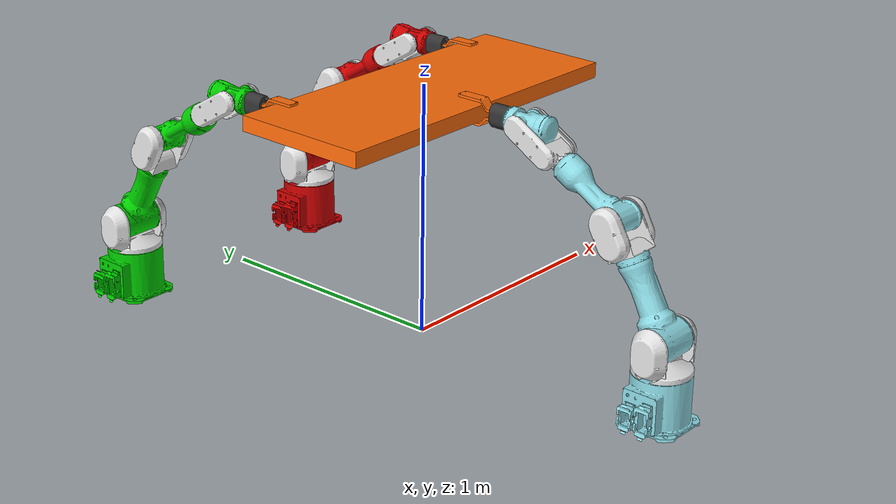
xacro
<?xml version="1.0" ?>

<robot name="pa10"
  xmlns:xacro="http://www.ros.org/wiki/xacro">

  <xacro:arg name="multiple" default="false"/>
  <!-- If multiple robots will be used -->
  <xacro:arg name="namespace" default=""/>
  <!-- namespace of the robot -->

  <!-- camera -->
  <xacro:arg name="enable_camera" default="false"/>

  <xacro:arg name="num_of_agents" default="3"/>
  <!-- robot arguements -->
  <xacro:arg name="pa10_1_color" default="default"/>
  <xacro:arg name="robot_1_interface" default="velocity"/>
  <xacro:arg name="pa10_2_color" default="red"/>
  <xacro:arg name="robot_2_interface" default="velocity"/>
  <xacro:arg name="pa10_3_color" default="green"/>
  <xacro:arg name="robot_3_interface" default="velocity"/>

  <xacro:arg name="use_object" default="true"/>
  <xacro:arg name="type_of_object" default="box"/>

  <!-- Number of Agents -->
  <xacro:property name="agents" value="$(arg num_of_agents)"/>
  <!-- general properties -->
  <xacro:property name="robot_radius" value="0.938"/>
  <xacro:property name="cos30" value="0.866"/>
  <xacro:property name="sin30" value="0.5"/>

  <!-- ROBOT 1 Properties -->
  <xacro:property name="robot_1_x" value="0.0"/>
  <xacro:property name="robot_1_y" value="-1.1"/>
  <xacro:property name="robot_1_yaw" value= "1.57079"/>
  <xacro:property name="HWInterface" value="$(arg robot_1_interface)" />

  <!-- ROBOT 2 Properties -->
  <xacro:property name="robot_2_enable" value="false"/>
  <xacro:property name="robot_2_x" value="0.5"/>
  <xacro:property name="robot_2_y" value="1.1"/>
  <xacro:property name="robot_2_yaw" value="1.57079"/>
  <xacro:property name="HWInterface2" value="$(arg robot_2_interface)" />

  <!-- ROBOT 3 Properties -->
  <xacro:property name="robot_3_enable" value="false"/>
  <xacro:property name="robot_3_x" value="-0.5"/>
  <xacro:property name="robot_3_y" value="1.1"/>
  <xacro:property name="robot_3_yaw" value="1.57079"/>
  <xacro:property name="HWInterface3" value="$(arg robot_3_interface)" />

  <xacro:property name="is_multiple" value="$(arg multiple)" />
  <xacro:property name="nsp" value="$(arg namespace)" />
  <xacro:property name="enable_camera_" value="$(arg enable_camera)" />

  <!-- OBJECT PARAMETERS -->
  <xacro:property name="use_object_" value="$(arg use_object)"/>
  <xacro:property name="object_length" value="0.545"/>
  <xacro:property name="object_height" value="0.545"/>
  <xacro:property name="object_color" value="white"/>
  <xacro:property name="object_mass" value="1.0"/>
  <xacro:property name="object_type" value="$(arg type_of_object)"/>

  <!-- Import all Gazebo-customization elements, including Gazebo colors -->
  <xacro:include filename="$(find pa10_description)/urdf/pa10csl.gazebo.urdf.xacro" />
  <!-- Import Rviz colors -->
  <xacro:include filename="$(find pa10_description)/urdf/materials.xacro" />
  <!-- Import Transmitions -->
  <xacro:include filename="$(find pa10_description)/urdf/arm.transmission.xacro"/>
  <!-- Import pa10 properties -->
  <xacro:include filename="$(find pa10_description)/urdf/pa10properties.xacro"/>
  <!-- Import sensors -->
  <xacro:include filename="$(find pa10_description)/urdf/sensors.urdf.xacro"/>
  <!-- Import PA10 Arm -->
  <xacro:include filename="$(find pa10_description)/urdf/pa10root.urdf.xacro"/>

  <xacro:if value="${agents == 2}">
    <xacro:if value="${object_type == 'box'}">
      <xacro:property name="robot_2_x" value="0.0"/>
      <xacro:property name="robot_2_enable" value="true"/>
      <xacro:property name="robot_3_enable" value="false"/>
      <xacro:property name="object_length" value="0.545"/>
      <xacro:property name="use_object_" value="true"/>
    </xacro:if>
    <xacro:if value="${object_type == 'cylinder'}">
      <xacro:property name="robot_2_x" value="0.0"/>
      <xacro:property name="robot_2_enable" value="true"/>
      <xacro:property name="robot_3_enable" value="false"/>
      <xacro:property name="object_length" value="${0.545/2}"/>
      <xacro:property name="use_object_" value="true"/>
    </xacro:if>
  </xacro:if>

  <xacro:if value="${agents == 3}">
    <xacro:if value="${object_type == 'cylinder'}">

      <xacro:property name="object_length" value="${0.545/2}"/>
      <xacro:property name="use_object_" value="true"/>

      <xacro:property name="robot_2_x" value="${cos30*(object_length + robot_radius-0.1)}"/>
      <xacro:property name="robot_2_y" value="${sin30*(object_length + robot_radius-0.1)}"/>
      <xacro:property name="robot_2_yaw" value="${pi/6}"/>
      <xacro:property name="robot_2_enable" value="true"/>

      <xacro:property name="robot_3_x" value="${-cos30*(object_length + robot_radius-0.1)}"/>
      <xacro:property name="robot_3_y" value="${sin30*(object_length + robot_radius-0.1)}"/>
      <xacro:property name="robot_3_yaw" value="${pi/3+pi/2}"/>
      <xacro:property name="robot_3_enable" value="true"/>

    </xacro:if>
    <xacro:if value="${object_type == 'box'}">
      <xacro:property name="use_object_" value="true"/>
      <xacro:property name="object_length" value="1.345"/>
      <xacro:property name="robot_2_x" value="0.5"/>
      <xacro:property name="robot_2_enable" value="true"/>
      <xacro:property name="robot_3_x" value="-0.5"/>
      <xacro:property name="robot_3_enable" value="true"/>
    </xacro:if>
  </xacro:if>
  <!-- LINKS -->

  <link name="world"/>

  <xacro:pa10_arm prefix="pa10_1_" xyz="${robot_1_x} ${robot_1_y} 0.0" rpy="0 0 ${robot_1_yaw}" S2_offset="0.5" E2_offset="0.53" W2_offset="0.54" W3_offset="-1.57" interface="${HWInterface}" enable_camera="false" color="$(arg pa10_1_color)"/>

  <xacro:if value="${use_object_}">
    <!--- Object -->
    <link name="object">
      <visual>
        <origin xyz="0 0 -0.0" rpy="0 0 0"/>
        <geometry>
          <xacro:if value="${object_type == 'cylinder'}">
            <cylinder length="0.06" radius="${object_length}"/>
          </xacro:if>
          <xacro:if value="${object_type == 'box'}">
            <box size="${object_length} ${object_height} 0.06"/>
          </xacro:if>
        </geometry>
        <material name="orange"/>
      </visual>
      <collision>
        <origin xyz="0 0 0.0" rpy="0 0 0"/>
        <geometry>
          <xacro:if value="${object_type == 'cylinder'}">
            <cylinder length="0.06" radius="${object_length/1.2}"/>
          </xacro:if>
          <xacro:if value="${object_type == 'box'}">
            <box size="${object_length/2} ${object_height/2} 0.06"/>
          </xacro:if>
        </geometry>
      </collision>
      <inertial>
        <mass value="${object_mass}"/>
        <xacro:if value="${object_type == 'cylinder'}">
          <xacro:inertia_cylinder radius="${object_length}" height="0.06" mass="${object_mass}"/>
        </xacro:if>
        <xacro:if value="${object_type == 'box'}">
          <xacro:inertia_box height="${object_length}" mass="${object_mass}"/>
        </xacro:if>
      </inertial>
    </link>

    <!-- Attach object to pa10_1 -->
    <joint name="$pa10_1_ee_tool_to_object" type="fixed">
      <origin rpy="1.576 0 -3.141" xyz="0 0 0.162"/>
      <parent link="pa10_1_link_ee_tool"/>
      <child link="object"/>
    </joint>
  </xacro:if>

  <!-- ROBOT 2 -->
  <xacro:if value="${robot_2_enable}">
    <xacro:pa10_arm prefix="pa10_2_" xyz="${robot_2_x} ${robot_2_y} 0.0" rpy="0 0 ${robot_2_yaw}" S2_offset="-0.5" E2_offset="-0.53" W2_offset="-0.54" W3_offset="-1.57" interface="${HWInterface2}" enable_camera="false" color="$(arg pa10_2_color)"/>

    <gazebo>
      <joint name="object_to_pa10_2" type="fixed">
        <parent>object</parent>
        <child>pa10_2_link_ee_tool</child>
        <xacro:if value="${object_type == 'cylinder'}">
          <xacro:if value="${agents == 3}">
            <pose>0.157 0.102 -0.003 -1.571 0 2.094</pose>
          </xacro:if>
          <xacro:if value="${agents == 2}">
            <pose>${robot_2_x} 0.162 0.0 -1.576 0 -3.142</pose>
          </xacro:if>
        </xacro:if>
        <xacro:if value="${object_type == 'box'}">
          <pose>${robot_2_x} 0.162 0.0 -1.576 0 -3.142</pose>
        </xacro:if>
      </joint>
    </gazebo>

  </xacro:if>

  <!-- ROBOT 3 -->
  <xacro:if value="${robot_3_enable}">
    <xacro:pa10_arm prefix="pa10_3_" xyz="${robot_3_x} ${robot_3_y} 0.0" rpy="0 0 ${robot_3_yaw}" S2_offset="-0.5" E2_offset="-0.53" W2_offset="-0.54" W3_offset="-1.57" interface="${HWInterface3}" enable_camera="${enable_camera_}" color="$(arg pa10_3_color)"/>

    <gazebo>
      <joint name="object_to_pa10_3" type="fixed">
        <parent>object</parent>
        <child>pa10_3_link_ee_tool</child>
        <xacro:if value="${object_type == 'cylinder'}">
          <xacro:if value="${agents == 3}">
            <pose>-0.157 0.102 -0.003 -1.571 0 -2.094</pose>
          </xacro:if>
          <xacro:if value="${agents == 2}">
            <pose>${robot_3_x} 0.162 0.0 -1.576 0 -3.142</pose>
          </xacro:if>
        </xacro:if>
        <xacro:if value="${object_type == 'box'}">
          <pose>${robot_3_x} 0.162 0.0 -1.576 0 -3.142</pose>
        </xacro:if>
      </joint>
    </gazebo>

  </xacro:if>

</robot>

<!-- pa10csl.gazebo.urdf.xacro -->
<robot xmlns:xacro="http://www.ros.org/wiki/xacro">

  <!-- ros_control plugin  and RGBD Sensor Plugin-->
  <gazebo>
    <plugin name="gazebo_ros_control" filename="libgazebo_ros_control.so">
      <xacro:if value="${is_multiple}">
        <robotNamespace>/${nsp}</robotNamespace>
      </xacro:if>
      <xacro:unless value="${is_multiple}">
        <robotNamespace></robotNamespace>
      </xacro:unless>
      <robotSimType>gazebo_ros_control/DefaultRobotHWSim</robotSimType>
      <legacyModeNS>true</legacyModeNS>
      <controlPeriod> 0.001</controlPeriod>
    </plugin>
  </gazebo>

  <!-- Inertial of Cylinder -->
  <xacro:macro name="inertia_cylinder" params="mass height radius axis:=0">
    <xacro:property name="Ir" value="${0.0833*mass*(3.0*radius*radius + height*height)}" />
    <xacro:property name="Ih" value="${0.5*mass*(radius*radius)}" />
    <!-- z Axis -->
    <xacro:unless value="${axis}">
      <inertia ixx="${Ir}" ixy="0" ixz="0" iyy="${Ir}" iyz="0" izz="${Ih}" />
    </xacro:unless>
    <!-- y Axis -->
    <xacro:unless value="${axis-1}">
      <inertia ixx="${Ir}" ixy="0" ixz="0" iyy="${Ih}" izz="${Ir}" iyz="0" />
    </xacro:unless>
    <!-- x Axis -->
    <xacro:unless value="${axis-2}">
      <inertia ixx="${Ih}" iyy="${Ir}" iyz="0" izz="${Ir}" ixy="0" ixz="0" />
    </xacro:unless>
  </xacro:macro>

  <!-- Inertial of Box -->
  <xacro:macro name="inertia_box" params="mass height:=0.05 width:=0.0 depth:=0.0">
    <xacro:if value="${width == 0.0}">
      <xacro:property name="width" value="${height}"/>
    </xacro:if>
    <xacro:if value="${depth == 0.0}">
      <xacro:property name="depth" value="${height}"/>
    </xacro:if>
    <xacro:property name="Iw" value="${(1.0/12.0)*mass*(height*height + depth*depth)}" />
    <xacro:property name="Ih" value="${(1.0/12.0)*mass*(width*width + depth*depth)}" />
    <xacro:property name="Id" value="${(1.0/12.0)*mass*(width*width + height*height)}" />

    <inertia ixx="${Iw}" ixy="0" ixz="0" iyy="${Ih}" iyz="0" izz="${Id}" />
  </xacro:macro>

  <!-- Gazebo Colors Material -->
  <xacro:macro name="gazebo_materials" params="prefix:='' color:='default'">
    <!-- base_link -->
    <gazebo reference="${prefix}base_link">
      <mu1>0.5</mu1>
      <mu2>0.5</mu2>
      <xacro:if value="${color == 'default'}">
        <visual>
          <material>
            <ambient>0.55 0.85 0.89 1.0</ambient>
            <diffuse>.7 .7 .7  1.0</diffuse>
            <specular>0.01 0.01 0.01 1.000000 1.500000</specular>
          </material>
        </visual>
      </xacro:if>
      <xacro:if value="${color == 'red'}">
        <material>
            Gazebo/Red
        </material>
      </xacro:if>
      <xacro:if value="${color == 'green'}">
        <material>
            Gazebo/Green
        </material>
      </xacro:if>
      <xacro:if value="${color == 'orange'}">
        <material>
            Gazebo/Orange
        </material>
      </xacro:if>

    </gazebo>

    <!-- Link1 -->
    <gazebo reference="${prefix}link_shoulder_1">
      <visual>
        <material>
          <ambient>0.88 0.88 0.88 1.0</ambient>
          <diffuse>.7 .7 .7  1.0</diffuse>
          <specular>0.01 0.01 0.01 1.000000 1.500000</specular>
        </material>
      </visual>
    </gazebo>

    <!-- Link2 -->
    <gazebo reference="${prefix}link_shoulder_2">
      <mu1>0.5</mu1>
      <mu2>0.5</mu2>
      <xacro:if value="${color == 'default'}">
        <visual>
          <material>
            <ambient>0.55 0.85 0.89 1.0</ambient>
            <diffuse>.7 .7 .7  1.0</diffuse>
            <specular>0.01 0.01 0.01 1.000000 1.500000</specular>
          </material>
        </visual>
      </xacro:if>
      <xacro:if value="${color == 'red'}">
        <material>
            Gazebo/Red
        </material>
      </xacro:if>
      <xacro:if value="${color == 'green'}">
        <material>
            Gazebo/Green
        </material>
      </xacro:if>
      <xacro:if value="${color == 'orange'}">
        <material>
            Gazebo/Orange
        </material>
      </xacro:if>

    </gazebo>

    <!-- Link3 -->
    <gazebo reference="${prefix}link_elbow_1">
      <mu1>0.5</mu1>
      <mu2>0.5</mu2>
      <visual>
        <material>
          <ambient>0.88 0.88 0.88 1.0</ambient>
          <diffuse>.7 .7 .7  1.0</diffuse>
          <specular>0.01 0.01 0.01 1.000000 1.500000</specular>
        </material>
      </visual>
    </gazebo>

    <!-- Link4 -->
    <gazebo reference="${prefix}link_elbow_2">
      <mu1>0.5</mu1>
      <mu2>0.5</mu2>
      <xacro:if value="${color == 'default'}">
        <visual>
          <material>
            <ambient>0.55 0.85 0.89 1.0</ambient>
            <diffuse>.7 .7 .7  1.0</diffuse>
            <specular>0.01 0.01 0.01 1.000000 1.500000</specular>
          </material>
        </visual>
      </xacro:if>
      <xacro:if value="${color == 'red'}">
        <material>
            Gazebo/Red
        </material>
      </xacro:if>
      <xacro:if value="${color == 'green'}">
        <material>
            Gazebo/Green
        </material>
      </xacro:if>
      <xacro:if value="${color == 'orange'}">
        <material>
            Gazebo/Orange
        </material>
      </xacro:if>
    </gazebo>

    <!-- Link5 -->
    <gazebo reference="${prefix}link_wrist_1">
      <mu1>0.5</mu1>
      <mu2>0.5</mu2>
      <visual>
        <material>
          <ambient>0.88 0.88 0.88 1.0</ambient>
          <diffuse>.7 .7 .7  1.0</diffuse>
          <specular>0.01 0.01 0.01 1.000000 1.500000</specular>
        </material>
      </visual>
    </gazebo>

    <!-- Link6 -->
    <gazebo reference="${prefix}link_wrist_2">
      <mu1>0.5</mu1>
      <mu2>0.5</mu2>
      <xacro:if value="${color == 'default'}">
        <visual>
          <material>
            <ambient>0.55 0.85 0.89 1.0</ambient>
            <diffuse>.7 .7 .7  1.0</diffuse>
            <specular>0.01 0.01 0.01 1.000000 1.500000</specular>
          </material>
        </visual>
      </xacro:if>
      <xacro:if value="${color == 'red'}">
        <material>
            Gazebo/Red
        </material>
      </xacro:if>
      <xacro:if value="${color == 'green'}">
        <material>
            Gazebo/Green
        </material>
      </xacro:if>
      <xacro:if value="${color == 'orange'}">
        <material>
            Gazebo/Orange
        </material>
      </xacro:if>

    </gazebo>

    <gazebo reference="${prefix}link_wrist_3">
      <mu1>0.5</mu1>
      <mu2>0.5</mu2>

      <xacro:if value="${color == 'default'}">
        <visual>
          <material>
            <ambient>0.55 0.85 0.89 1.0</ambient>
            <diffuse>.7 .7 .7  1.0</diffuse>
            <specular>0.01 0.01 0.01 1.000000 1.500000</specular>
          </material>
        </visual>
      </xacro:if>
      <xacro:if value="${color == 'red'}">
        <material>
            Gazebo/Red
        </material>
      </xacro:if>
      <xacro:if value="${color == 'green'}">
        <material>
            Gazebo/Green
        </material>
      </xacro:if>
      <xacro:if value="${color == 'orange'}">
        <material>
            Gazebo/Orange
        </material>
      </xacro:if>

    </gazebo>

    <gazebo reference="${prefix}link_gripper_base">
      <mu1>0.5</mu1>
      <mu2>0.5</mu2>
      <material>Gazebo/Grey</material>
    </gazebo>

    <gazebo reference="${prefix}link_finger_1">
      <mu1>1000.5</mu1>
      <mu2>1000.5</mu2>
      <material>Gazebo/Orange</material>
    </gazebo>

    <gazebo reference="${prefix}link_finger_2">
      <mu1>1000.5</mu1>
      <mu2>1000.5</mu2>
      <material>Gazebo/Orange</material>
    </gazebo>
  </xacro:macro>

  <gazebo>
    <material name="pa10_blue">
      <color rgba="${140/255} ${217/255} ${227/255} 1.0"/>
    </material>
  </gazebo>

</robot>

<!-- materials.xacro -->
<robot xmlns:xacro="http://www.ros.org/wiki/xacro">

  <material name="black">
    <color rgba="0.0 0.0 0.0 1.0"/>
  </material>

  <material name="blue">
    <color rgba="0.0 0.0 0.8 1.0"/>
  </material>

  <material name="green">
    <color rgba="0.0 0.8 0.0 1.0"/>
  </material>

  <material name="grey">
    <color rgba="0.2 0.2 0.2 1.0"/>
  </material>

  <material name="orange">
    <color rgba="${255/255} ${108/255} ${10/255} 1.0"/>
  </material>

  <material name="brown">
    <color rgba="${222/255} ${207/255} ${195/255} 1.0"/>
  </material>

  <material name="pa10_blue">
    <color rgba="${140/255} ${217/255} ${227/255} 1.0"/>
  </material>

  <material name="red">
    <color rgba="0.8 0.0 0.0 1.0"/>
  </material>

  <material name="white">
    <color rgba="1.0 1.0 1.0 1.0"/>
  </material>

</robot>

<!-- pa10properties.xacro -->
<robot xmlns:xacro="http://www.ros.org/wiki/xacro">

    <!-- Not used yet -->
    <xacro:property name="inertia_height_shoulder" value="500"/>
    <xacro:property name="inertia_height_elbow" value="300"/>
    <xacro:property name="inertia_height_wrist" value="100"/>
    <xacro:property name="inertia_height_gripper" value="100"/>

    <!-- Mass -->
    <xacro:property name="mass_shoulder" value="0.5"/>
    <xacro:property name="mass_elbow" value="0.5"/>
    <xacro:property name="mass_wrist" value="0.01"/>
    <xacro:property name="mass_gripper" value="0.01"/>

    <xacro:property name="pi" value="3.1415926535897931" />
    <!-- JOINTS EFFORT LIMITS -->
    <!-- NOT THE ACTUAL VALUE -->
    <xacro:property name="arm_eps" value="0.02" />
    <xacro:property name="joint_1_max_effort" value="550.0"/>
    <xacro:property name="joint_2_max_effort" value="550.0"/>
    <xacro:property name="joint_3_max_effort" value="550.0"/>
    <xacro:property name="joint_4_max_effort" value="550.0"/>
    <xacro:property name="joint_5_max_effort" value="550.0"/>
    <xacro:property name="joint_6_max_effort" value="550.0"/>
    <xacro:property name="joint_7_max_effort" value="550.0"/>

    <!-- JOINTS POSITION LIMITS -->
    <!-- Real Values: [177, 94, 174, 137, 255, 165, 255] (deg)-->
    <xacro:property name="joint_1_max_position" value="${170.0 *pi/180.0}"/>
    <xacro:property name="joint_2_max_position" value="${90.0 *pi/180.0}"/>
    <xacro:property name="joint_3_max_position" value="${170.0 *pi/180.0}"/>
    <xacro:property name="joint_4_max_position" value="${130.0 *pi/180.0}"/>
    <xacro:property name="joint_5_max_position" value="${250.0 *pi/180.0}"/>
    <xacro:property name="joint_6_max_position" value="${160.0 *pi/180.0}"/>
    <xacro:property name="joint_7_max_position" value="${250.0 *pi/180.0}"/>

    <!-- JOINTS VELOCITIE LIMITS-->
    <!-- Real Values: [1, 1, 2, 2, 2, 2*pi, 2*pi] (rad/sec)-->
    <xacro:property name="joint_1_max_velocity" value="1.1"/>
    <xacro:property name="joint_2_max_velocity" value="1.1"/>
    <xacro:property name="joint_3_max_velocity" value="1.1"/>
    <xacro:property name="joint_4_max_velocity" value="1.1"/>
    <xacro:property name="joint_5_max_velocity" value="1.1"/>
    <xacro:property name="joint_6_max_velocity" value="${1.8*pi}"/>
    <xacro:property name="joint_7_max_velocity" value="${1.8*pi}"/>

    <!-- JOINT DYNAMICS DAMPING + FRICTION-->
    <!-- >> !! Not Real Values !! << -->
    <!-- DAMPING -->
    <xacro:property name="joint_1_damping" value="0.8"/>
    <xacro:property name="joint_2_damping" value="0.8"/>
    <xacro:property name="joint_3_damping" value="0.8"/>
    <xacro:property name="joint_4_damping" value="0.8"/>
    <xacro:property name="joint_5_damping" value="0.8"/>
    <xacro:property name="joint_6_damping" value="0.8"/>
    <xacro:property name="joint_7_damping" value="0.8"/>
    <xacro:property name="joint_finger_damping" value="0.8"/>

    <!-- FRICTION -->
    <xacro:property name="joint_1_friction" value="0.1"/>
    <xacro:property name="joint_2_friction" value="0.1"/>
    <xacro:property name="joint_3_friction" value="0.1"/>
    <xacro:property name="joint_4_friction" value="0.1"/>
    <xacro:property name="joint_5_friction" value="0.1"/>
    <xacro:property name="joint_6_friction" value="0.1"/>
    <xacro:property name="joint_7_friction" value="0.1"/>
    <xacro:property name="joint_finger_friction" value="0.2"/>

</robot>

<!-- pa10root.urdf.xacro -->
<robot xmlns:xacro="http://www.ros.org/wiki/xacro">

    <xacro:macro name="pa10_arm" params="prefix xyz:='0 -1.1 0.0' rpy:='0 0 1.57079'  S2_offset:='0.5' E2_offset:='0.53'  W2_offset:='0.54' W3_offset:='-1.57' interface:=velocity enable_camera:=false color:='default'">

        <link name="${prefix}base_link">
            <visual>
                <origin rpy="0 0 3.14" xyz="0 0 0"/>
                <geometry>
                    <mesh filename="package://pa10_description/pa10_stl/S1.stl" scale="1 1 1"/>
                </geometry>
                <xacro:if value="${color == 'default'}">
                    <material name="pa10_blue"/>
                </xacro:if>
                <xacro:unless value="${color == 'default'}">
                    <material name="${color}"/>
                </xacro:unless>
            </visual>
            <collision>
                <origin rpy="0 0 3.14" xyz="0 0 0"/>
                <geometry>
                    <mesh filename="package://pa10_description/pa10_stl_collision/S1_collision.stl" scale="1 1 1"/>
                </geometry>
            </collision>
            <inertial>
                <origin rpy="0 0 3.14" xyz="0 0 0.0"/>
                <mass value="${mass_shoulder}"/>
                <inertia ixx="0.1" ixy="0.0" ixz="0.0" iyy="0.1" iyz="0.0" izz="0.1"/>

            </inertial>
        </link>

        <link name="${prefix}link_shoulder_1">
            <visual>
                <origin rpy="0 0 0" xyz="0 0 0.117"/>
                <geometry>
                    <mesh filename="package://pa10_description/pa10_stl/S2.stl" scale="1 1 1"/>
                </geometry>
                <material name="">
                    <color rgba="0.88 0.88 0.88 1.0"/>
                </material>
            </visual>
            <collision>
                <origin rpy="0 0 0" xyz="0 0 0.117"/>
                <geometry>
                    <mesh filename="package://pa10_description/pa10_stl_collision/S2_collision.stl" scale="1 1 1"/>
                </geometry>
            </collision>
            <inertial>
                <mass value="${mass_shoulder}"/>
                <inertia ixx="0.1" ixy="0.0" ixz="0.0" iyy="0.1" iyz="0.0" izz="0.1"/>

            </inertial>
        </link>

        <link name="${prefix}link_shoulder_2">
            <visual>
                <origin rpy="-1.57079 0 3.14159" xyz="0 0 0"/>
                <geometry>
                    <mesh filename="package://pa10_description/pa10_stl/S3.stl" scale="1 1 1"/>
                </geometry>
                <xacro:if value="${color == 'default'}">
                    <material name="pa10_blue"/>
                </xacro:if>
                <xacro:unless value="${color == 'default'}">
                    <material name="${color}"/>
                </xacro:unless>
            </visual>
            <collision>
                <origin rpy="-1.57079 0 3.14159" xyz="0 0 0"/>
                <geometry>
                    <mesh filename="package://pa10_description/pa10_stl_collision/S3_collision.stl" scale="1 1 1"/>
                </geometry>
            </collision>
            <inertial>
                <origin rpy="-1.57079 0 3.14159" xyz="0 -0.0 0.0"/>
                <mass value="${mass_shoulder}"/>
                <inertia ixx="0.1" ixy="0.0" ixz="0.0" iyy="0.1" iyz="0.0" izz="0.1"/>
            </inertial>
        </link>

        <link name="${prefix}link_shoulder_to_elbow">
            <inertial>
                <origin rpy="0 0 0" xyz="0 0 0.0"/>
                <mass value="0.5"/>
                <inertia ixx="0.1" ixy="0.0" ixz="0.0" iyy="0.1" iyz="0.0" izz="0.1"/>
            </inertial>
        </link>

        <link name="${prefix}link_elbow_1">
            <visual>
                <origin rpy="0 0 0" xyz="0 0.0 0.133"/>
                <geometry>
                    <mesh filename="package://pa10_description/pa10_stl/E1.stl" scale="1 1 1"/>
                </geometry>
                <material name="">
                    <color rgba="0.88 0.88 0.88 1.0"/>
                </material>
            </visual>
            <collision>
                <origin rpy="0 0 0" xyz="0 0.0 0.133"/>
                <geometry>
                    <mesh filename="package://pa10_description/pa10_stl_collision/E1_collision.stl" scale="1 1 1"/>
                </geometry>
            </collision>
            <inertial>
                <mass value="${mass_elbow}"/>
                <inertia ixx="0.1" ixy="0.0" ixz="0.0" iyy="0.1" iyz="0.0" izz="0.1"/>
            </inertial>
        </link>

        <link name="${prefix}link_elbow_2">
            <visual>
                <origin rpy="1.57079 0 0" xyz="0 0.003 0"/>
                <geometry>
                    <mesh filename="package://pa10_description/pa10_stl/E2.stl" scale="1 1 1"/>
                </geometry>
                <xacro:if value="${color == 'default'}">
                    <material name="pa10_blue"/>
                </xacro:if>
                <xacro:unless value="${color == 'default'}">
                    <material name="${color}"/>
                </xacro:unless>
            </visual>
            <collision>
                <origin rpy="1.57079 0 0" xyz="0 0.003 0"/>
                <geometry>
                    <mesh filename="package://pa10_description/pa10_stl_collision/E2_collision.stl" scale="1 1 1"/>
                </geometry>
            </collision>
            <inertial>
                <origin rpy="1.57079 0 0" xyz="0 -0.0 0"/>
                <mass value="${mass_elbow}"/>
                <inertia ixx="0.1" ixy="0.0" ixz="0.0" iyy="0.1" iyz="0.0" izz="0.1"/>

            </inertial>
        </link>

        <link name="${prefix}link_wrist_1">
            <visual>
                <origin rpy="0 0 0" xyz="0 0 0.195"/>
                <geometry>
                    <mesh filename="package://pa10_description/pa10_stl/W1.stl" scale="1 1 1"/>
                </geometry>
                <material name="">
                    <color rgba="0.88 0.88 0.88 1.0"/>
                </material>
            </visual>
            <collision>
                <origin rpy="0 0 0" xyz="0 0 0.195"/>
                <geometry>
                    <mesh filename="package://pa10_description/pa10_stl_collision/W1_collision.stl" scale="1 1 1"/>
                </geometry>
            </collision>
            <inertial>
                <mass value="${mass_wrist}"/>
                <inertia ixx="0.1" ixy="0.0" ixz="0.0" iyy="0.1" iyz="0.0" izz="0.1"/>
            </inertial>
        </link>

        <link name="${prefix}link_wrist_2">
            <visual>
                <origin rpy="1.57079 0 0" xyz="0 0 0"/>
                <geometry>
                    <mesh filename="package://pa10_description/pa10_stl/W2.stl" scale="1 1 1"/>
                </geometry>
                <xacro:if value="${color == 'default'}">
                    <material name="pa10_blue"/>
                </xacro:if>
                <xacro:unless value="${color == 'default'}">
                    <material name="${color}"/>
                </xacro:unless>
            </visual>
            <collision>
                <origin rpy="1.57079 0 0" xyz="0 0 0"/>
                <geometry>
                    <mesh filename="package://pa10_description/pa10_stl_collision/W2_collision.stl" scale="1 1 1"/>
                </geometry>
            </collision>
            <inertial>
                <origin rpy="1.57079 0 0" xyz="0 0 0"/>
                <mass value="${mass_wrist}"/>
                <inertia ixx="0.1" ixy="0.0" ixz="0.0" iyy="0.1" iyz="0.0" izz="0.1"/>
            </inertial>
        </link>

        <link name="${prefix}link_wrist_3">
            <inertial>
                <origin rpy="0 0 0" xyz="0 0 0"/>
                <mass value="0.1"/>
                <inertia ixx="0.1" ixy="0.0" ixz="0.0" iyy="0.1" iyz="0.0" izz="0.1"/>
            </inertial>
        </link>

        <link name="${prefix}link_ee_tool">
            <inertial>
                <origin rpy="0 0 0" xyz="0 0 0"/>
                <mass value="0.1"/>
                <inertia ixx="0.1" ixy="0.0" ixz="0.0" iyy="0.1" iyz="0.0" izz="0.1"/>
            </inertial>
        </link>

        <!-- GRIPPER LINKS -->

        <link name="${prefix}link_gripper_base">
            <visual>
                <origin rpy="0 0 0" xyz="0 0 -0.045"/>
                <geometry>
                    <mesh filename="package://pa10_description/gripper_stl/pa10_gripper_base.stl" scale="1 1 1"/>
                </geometry>
                <material name="">
                    <color rgba="0.2 0.2 0.2 1.0"/>
                </material>
            </visual>
            <collision>
                <origin rpy="0 0 0" xyz="0 0 -0.045"/>
                <geometry>
                    <mesh filename="package://pa10_description/gripper_stl/pa10_gripper_base.stl" scale="1 1 1"/>
                </geometry>
            </collision>
            <inertial>
                <mass value="${mass_gripper}"/>
                <inertia ixx="0.1" ixy="0.0" ixz="0.0" iyy="0.1" iyz="0.0" izz="0.1"/>
            </inertial>
        </link>

        <link name="${prefix}link_finger_1">
            <visual>
                <origin rpy="-3.14159 -1.57079 0" xyz="-0.0225 0.075 -0.01"/>
                <geometry>
                    <mesh filename="package://pa10_description/gripper_stl/finger.STL" scale="0.001 0.001 0.001"/>
                </geometry>
                <material name="">
                    <color rgba="${255/255} ${108/255} ${10/255} 1.0"/>
                </material>
            </visual>
            <collision>
                <origin rpy="-3.14159 -1.57079 0" xyz="-0.0225 0.075 -0.01"/>
                <geometry>
                    <mesh filename="package://pa10_description/gripper_stl/finger.STL" scale="0.001 0.001 0.001"/>
                </geometry>
            </collision>
            <inertial>
                <mass value="${mass_gripper}"/>
                <inertia ixx="0.1" ixy="0.0" ixz="0.0" iyy="0.1" iyz="0.0" izz="0.1"/>
            </inertial>
        </link>

        <link name="${prefix}link_finger_2">
            <visual>
                <origin rpy="0 1.57079 0" xyz="-0.0225 -0.075 0.07"/>
                <geometry>
                    <mesh filename="package://pa10_description/gripper_stl/finger_left.STL" scale="0.001 0.001 0.001"/>
                </geometry>
                <material name="">
                    <color rgba="${255/255} ${108/255} ${10/255} 1.0"/>
                </material>
            </visual>
            <collision>
                <origin rpy="0 1.57079 0" xyz="-0.0225 -0.075 0.07"/>
                <geometry>
                    <mesh filename="package://pa10_description/gripper_stl/finger_left.STL" scale="0.001 0.001 0.001"/>
                </geometry>
            </collision>
            <inertial>
                <mass value="${mass_gripper}"/>
                <inertia ixx="0.1" ixy="0.0" ixz="0.0" iyy="0.1" iyz="0.0" izz="0.1"/>

            </inertial>
        </link>

        <joint name="${prefix}fixed" type="fixed">
            <!-- origin rpy="${-pi/2.0} 0 0" xyz="0 0 1.35"/ -->
            <origin rpy="${rpy}" xyz="${xyz}"/>
            <parent link="world"/>
            <child link="${prefix}base_link"/>
        </joint>

        <xacro:if value="${enable_camera}">

            <xacro:depth_sensor prefix="${prefix}"/>

            <joint name="${prefix}kinect" type="fixed">
                <origin rpy="${-125.0*pi/180.0} 0 ${-pi/2}" xyz="0.148 0.48 1.8"/>
                <parent link="${prefix}base_link"/>
                <child link="${prefix}kinect2_rgb_optical_frame"/>
            </joint>
        </xacro:if>

        <joint name="${prefix}S1" type="revolute">
            <origin rpy="0 0 0" xyz="0 0 0.2"/>
            <parent link="${prefix}base_link"/>
            <child link="${prefix}link_shoulder_1"/>
            <axis xyz="0 0 1"/>
            <limit effort="${joint_1_max_effort}" lower="${-joint_1_max_position}" upper="${joint_1_max_position}" velocity="${joint_1_max_velocity}"/>
            <dynamics damping="${joint_1_damping}" friction="${joint_1_friction}" />
        </joint>

        <joint name="${prefix}S2" type="revolute">
            <origin rpy="-1.57079 ${S2_offset} 0" xyz="0 0 0.117"/>
            <parent link="${prefix}link_shoulder_1"/>
            <child link="${prefix}link_shoulder_2"/>
            <axis xyz="0 0 1"/>
            <limit effort="${joint_2_max_effort}" lower="${-joint_2_max_position-S2_offset}" upper="${joint_2_max_position-S2_offset}" velocity="${joint_2_max_velocity}"/>
            <dynamics damping="${joint_2_damping}" friction="${joint_2_friction}" />

        </joint>

        <joint name="${prefix}soldier_to_elbow_joint" type="fixed">
            <origin rpy="1.57079 0 0" xyz="0 0 0"/>
            <parent link="${prefix}link_shoulder_2"/>
            <child link="${prefix}link_shoulder_to_elbow"/>
        </joint>

        <joint name="${prefix}E1" type="revolute">
            <origin rpy="0 0 0" xyz="0 0 0.317"/>
            <parent link="${prefix}link_shoulder_to_elbow"/>
            <child link="${prefix}link_elbow_1"/>
            <axis xyz="0 0 1"/>
            <limit effort="${joint_3_max_effort}" lower="${-joint_3_max_position}" upper="${joint_3_max_position}" velocity="${joint_3_max_velocity}"/>
            <dynamics damping="${joint_3_damping}" friction="${joint_3_friction}" />
        </joint>

        <joint name="${prefix}E2" type="revolute">
            <origin rpy="-1.57079 ${E2_offset}  0" xyz="0 0 0.133"/>
            <parent link="${prefix}link_elbow_1"/>
            <child link="${prefix}link_elbow_2"/>
            <axis xyz="0 0 1"/>
            <limit effort="${joint_4_max_effort}" lower="${-joint_4_max_position-E2_offset}" upper="${joint_4_max_position-E2_offset}" velocity="${joint_4_max_velocity}"/>
            <dynamics damping="${joint_4_damping}" friction="${joint_4_friction}" />
        </joint>

        <joint name="${prefix}W1" type="revolute">
            <origin rpy="1.57079 0 0" xyz="0 -0.285 0 "/>
            <parent link="${prefix}link_elbow_2"/>
            <child link="${prefix}link_wrist_1"/>
            <axis xyz="0 0 1"/>
            <limit effort="${joint_5_max_effort}" lower="${-joint_5_max_position}" upper="${joint_5_max_position}" velocity="${joint_5_max_velocity}"/>
            <dynamics damping="${joint_5_damping}" friction="${joint_5_friction}" />
        </joint>

        <joint name="${prefix}W2" type="revolute">
            <origin rpy="-1.57079 ${W2_offset} 0" xyz="0 0 0.195"/>
            <parent link="${prefix}link_wrist_1"/>
            <child link="${prefix}link_wrist_2"/>
            <axis xyz="0 0 1"/>
            <limit effort="${joint_6_max_effort}" lower="${-joint_6_max_position-W2_offset}" upper="${joint_6_max_position-W2_offset}" velocity="${joint_6_max_velocity}"/>
            <dynamics damping="${joint_6_damping}" friction="${joint_6_friction}" />
        </joint>

        <joint name="${prefix}W3" type="revolute">
            <origin rpy="1.57079 ${W3_offset} 0" xyz="0 -0.07 0"/>
            <parent link="${prefix}link_wrist_2"/>
            <child link="${prefix}link_wrist_3"/>
            <axis xyz="0 0 1"/>
            <limit effort="${joint_7_max_effort}" lower="${-joint_7_max_position-W3_offset}" upper="${joint_7_max_position-W3_offset}" velocity="${joint_7_max_velocity}"/>
            <dynamics damping="${joint_7_damping}" friction="${joint_7_friction}" />
        </joint>

        <joint name="${prefix}ee_tool_frame" type="fixed">
            <origin rpy="0 0 0" xyz="0 0 0.23"/>
            <parent link="${prefix}link_wrist_3"/>
            <child link="${prefix}link_ee_tool"/>
        </joint>

        <!-- GRIPPER JOINTS -->

        <joint name="${prefix}gripper_base" type="fixed">
            <origin rpy="0 0 0" xyz="0 0 0.045"/>
            <parent link="${prefix}link_wrist_3"/>
            <child link="${prefix}link_gripper_base"/>
        </joint>

        <joint name="${prefix}finger_joint_1" type="fixed">
            <origin rpy="-1.57079 0 0" xyz="0 ${-0.03-0.01} 0.11"/>
            <parent link="${prefix}link_gripper_base"/>
            <child link="${prefix}link_finger_1"/>
        </joint>

        <joint name="${prefix}finger_joint_2" type="fixed">
            <origin rpy="1.57079 0 0" xyz="0 ${0.03+0.01} 0.11"/>
            <parent link="${prefix}link_gripper_base"/>
            <child link="${prefix}link_finger_2"/>
        </joint>

        <xacro:arm_simple_transmission name="${prefix}S1" reduction="1" interface="${interface}" />
        <xacro:arm_simple_transmission name="${prefix}S2" reduction="1" interface="${interface}"/>
        <xacro:arm_simple_transmission name="${prefix}E1" reduction="1" interface="${interface}"/>
        <xacro:arm_simple_transmission name="${prefix}E2" reduction="1" interface="${interface}"/>
        <xacro:arm_simple_transmission name="${prefix}W1" reduction="1" interface="${interface}"/>
        <xacro:arm_simple_transmission name="${prefix}W2" reduction="1" interface="${interface}"/>
        <xacro:arm_simple_transmission name="${prefix}W3" reduction="1" interface="${interface}"/>

        <!-- COLORS GAZEBO -->
        <xacro:gazebo_materials prefix="${prefix}" color="${color}" />
        <xacro:ft_sensor_plugin name="${prefix}" joint_name="${prefix}W3" noise="0.02" />

    </xacro:macro>

</robot>
